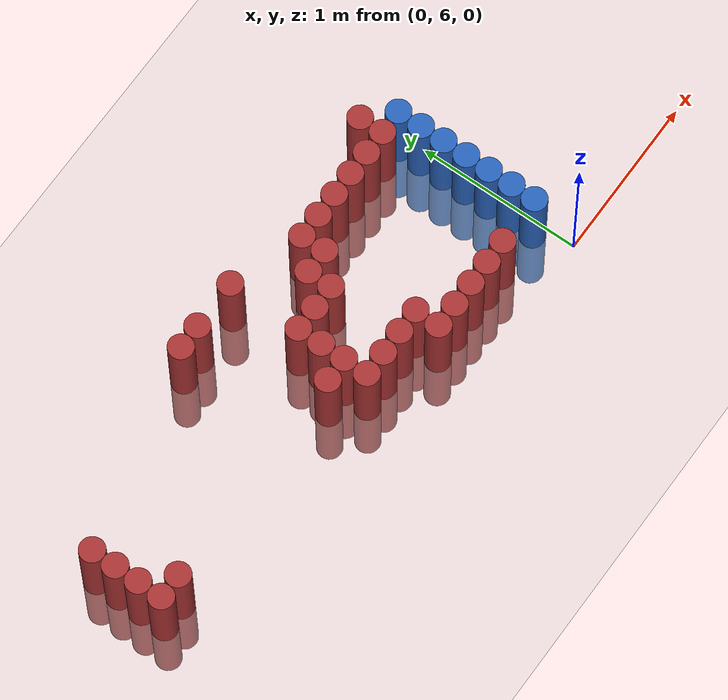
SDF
<sdf version="1.6">
 <world name="default">
  <model name="ground_plane">
   <static>1</static>
   <link name="link">
    <collision name="collision">
     <geometry><plane><normal>0 0 1</normal><size>100 100</size></plane></geometry>
     <surface><friction><ode><mu>100</mu><mu2>50</mu2></ode></friction></surface>
    </collision>
    <visual name="visual">
     <cast_shadows>0</cast_shadows>
     <geometry><plane><normal>0 0 1</normal><size>100 100</size></plane></geometry>
     <material>
      <script><uri>file://media/materials/scripts/gazebo.material</uri><name>Gazebo/Grey</name></script>
     </material>
    </visual>
   </link>
  </model>
  <model name="unit_cylinder_208">
   <static>1</static>
   <pose>-3.075000 6.525000 0.000000 0.000000 0.000000 0.000000</pose>
   <link name="link">
    <inertial>
     <mass>1</mass>
     <inertia><ixx>0.145833</ixx><ixy>0</ixy><ixz>0</ixz><iyy>0.145833</iyy><iyz>0</iyz><izz>0.125</izz></inertia>
    </inertial>
    <collision name="collision">
     <geometry><cylinder><radius>0.075000</radius><length>1</length></cylinder></geometry>
    </collision>
    <visual name="visual">
     <geometry><cylinder><radius>0.075000</radius><length>1</length></cylinder></geometry>
     <material>
      <ambient>0.648000 0.192000 0.192000 1</ambient>
      <diffuse>0.648000 0.192000 0.192000 1</diffuse>
     </material>
     <material>
      <script><name>Gazebo/Grey</name><uri>file://media/materials/scripts/gazebo.material</uri></script>
     </material>
    </visual>
    <sensor name="sensor_contact" type="contact"><contact><collision>collision</collision></contact></sensor>
   </link>
   <plugin filename="gz-sim-touchplugin-system" name="gz::sim::systems::TouchPlugin">
    <target>robot</target>
    <namespace>robot</namespace>
    <time>0.001</time>
    <enabled>true</enabled>
   </plugin>
  </model>
  <model name="unit_cylinder_209">
   <static>1</static>
   <pose>-3.075000 6.675000 0.000000 0.000000 0.000000 0.000000</pose>
   <link name="link">
    <inertial>
     <mass>1</mass>
     <inertia><ixx>0.145833</ixx><ixy>0</ixy><ixz>0</ixz><iyy>0.145833</iyy><iyz>0</iyz><izz>0.125</izz></inertia>
    </inertial>
    <collision name="collision">
     <geometry><cylinder><radius>0.075000</radius><length>1</length></cylinder></geometry>
    </collision>
    <visual name="visual">
     <geometry><cylinder><radius>0.075000</radius><length>1</length></cylinder></geometry>
     <material>
      <ambient>0.648000 0.192000 0.192000 1</ambient>
      <diffuse>0.648000 0.192000 0.192000 1</diffuse>
     </material>
     <material>
      <script><name>Gazebo/Grey</name><uri>file://media/materials/scripts/gazebo.material</uri></script>
     </material>
    </visual>
    <sensor name="sensor_contact" type="contact"><contact><collision>collision</collision></contact></sensor>
   </link>
   <plugin filename="gz-sim-touchplugin-system" name="gz::sim::systems::TouchPlugin">
    <target>robot</target>
    <namespace>robot</namespace>
    <time>0.001</time>
    <enabled>true</enabled>
   </plugin>
  </model>
  <model name="unit_cylinder_210">
   <static>1</static>
   <pose>-3.075000 6.825000 0.000000 0.000000 0.000000 0.000000</pose>
   <link name="link">
    <inertial>
     <mass>1</mass>
     <inertia><ixx>0.145833</ixx><ixy>0</ixy><ixz>0</ixz><iyy>0.145833</iyy><iyz>0</iyz><izz>0.125</izz></inertia>
    </inertial>
    <collision name="collision">
     <geometry><cylinder><radius>0.075000</radius><length>1</length></cylinder></geometry>
    </collision>
    <visual name="visual">
     <geometry><cylinder><radius>0.075000</radius><length>1</length></cylinder></geometry>
     <material>
      <ambient>0.648000 0.192000 0.192000 1</ambient>
      <diffuse>0.648000 0.192000 0.192000 1</diffuse>
     </material>
     <material>
      <script><name>Gazebo/Grey</name><uri>file://media/materials/scripts/gazebo.material</uri></script>
     </material>
    </visual>
    <sensor name="sensor_contact" type="contact"><contact><collision>collision</collision></contact></sensor>
   </link>
   <plugin filename="gz-sim-touchplugin-system" name="gz::sim::systems::TouchPlugin">
    <target>robot</target>
    <namespace>robot</namespace>
    <time>0.001</time>
    <enabled>true</enabled>
   </plugin>
  </model>
  <model name="unit_cylinder_211">
   <static>1</static>
   <pose>-3.075000 6.975000 0.000000 0.000000 0.000000 0.000000</pose>
   <link name="link">
    <inertial>
     <mass>1</mass>
     <inertia><ixx>0.145833</ixx><ixy>0</ixy><ixz>0</ixz><iyy>0.145833</iyy><iyz>0</iyz><izz>0.125</izz></inertia>
    </inertial>
    <collision name="collision">
     <geometry><cylinder><radius>0.075000</radius><length>1</length></cylinder></geometry>
    </collision>
    <visual name="visual">
     <geometry><cylinder><radius>0.075000</radius><length>1</length></cylinder></geometry>
     <material>
      <ambient>0.648000 0.192000 0.192000 1</ambient>
      <diffuse>0.648000 0.192000 0.192000 1</diffuse>
     </material>
     <material>
      <script><name>Gazebo/Grey</name><uri>file://media/materials/scripts/gazebo.material</uri></script>
     </material>
    </visual>
    <sensor name="sensor_contact" type="contact"><contact><collision>collision</collision></contact></sensor>
   </link>
   <plugin filename="gz-sim-touchplugin-system" name="gz::sim::systems::TouchPlugin">
    <target>robot</target>
    <namespace>robot</namespace>
    <time>0.001</time>
    <enabled>true</enabled>
   </plugin>
  </model>
  <model name="unit_cylinder_217">
   <static>1</static>
   <pose>-2.925000 6.525000 0.000000 0.000000 0.000000 0.000000</pose>
   <link name="link">
    <inertial>
     <mass>1</mass>
     <inertia><ixx>0.145833</ixx><ixy>0</ixy><ixz>0</ixz><iyy>0.145833</iyy><iyz>0</iyz><izz>0.125</izz></inertia>
    </inertial>
    <collision name="collision">
     <geometry><cylinder><radius>0.075000</radius><length>1</length></cylinder></geometry>
    </collision>
    <visual name="visual">
     <geometry><cylinder><radius>0.075000</radius><length>1</length></cylinder></geometry>
     <material>
      <ambient>0.648000 0.192000 0.192000 1</ambient>
      <diffuse>0.648000 0.192000 0.192000 1</diffuse>
     </material>
     <material>
      <script><name>Gazebo/Grey</name><uri>file://media/materials/scripts/gazebo.material</uri></script>
     </material>
    </visual>
    <sensor name="sensor_contact" type="contact"><contact><collision>collision</collision></contact></sensor>
   </link>
   <plugin filename="gz-sim-touchplugin-system" name="gz::sim::systems::TouchPlugin">
    <target>robot</target>
    <namespace>robot</namespace>
    <time>0.001</time>
    <enabled>true</enabled>
   </plugin>
  </model>
  <model name="unit_cylinder_227">
   <static>1</static>
   <pose>-1.875000 7.275000 0.000000 0.000000 0.000000 0.000000</pose>
   <link name="link">
    <inertial>
     <mass>1</mass>
     <inertia><ixx>0.145833</ixx><ixy>0</ixy><ixz>0</ixz><iyy>0.145833</iyy><iyz>0</iyz><izz>0.125</izz></inertia>
    </inertial>
    <collision name="collision">
     <geometry><cylinder><radius>0.075000</radius><length>1</length></cylinder></geometry>
    </collision>
    <visual name="visual">
     <geometry><cylinder><radius>0.075000</radius><length>1</length></cylinder></geometry>
     <material>
      <ambient>0.648000 0.192000 0.192000 1</ambient>
      <diffuse>0.648000 0.192000 0.192000 1</diffuse>
     </material>
     <material>
      <script><name>Gazebo/Grey</name><uri>file://media/materials/scripts/gazebo.material</uri></script>
     </material>
    </visual>
    <sensor name="sensor_contact" type="contact"><contact><collision>collision</collision></contact></sensor>
   </link>
   <plugin filename="gz-sim-touchplugin-system" name="gz::sim::systems::TouchPlugin">
    <target>robot</target>
    <namespace>robot</namespace>
    <time>0.001</time>
    <enabled>true</enabled>
   </plugin>
  </model>
  <model name="unit_cylinder_233">
   <static>1</static>
   <pose>-1.725000 7.275000 0.000000 0.000000 0.000000 0.000000</pose>
   <link name="link">
    <inertial>
     <mass>1</mass>
     <inertia><ixx>0.145833</ixx><ixy>0</ixy><ixz>0</ixz><iyy>0.145833</iyy><iyz>0</iyz><izz>0.125</izz></inertia>
    </inertial>
    <collision name="collision">
     <geometry><cylinder><radius>0.075000</radius><length>1</length></cylinder></geometry>
    </collision>
    <visual name="visual">
     <geometry><cylinder><radius>0.075000</radius><length>1</length></cylinder></geometry>
     <material>
      <ambient>0.648000 0.192000 0.192000 1</ambient>
      <diffuse>0.648000 0.192000 0.192000 1</diffuse>
     </material>
     <material>
      <script><name>Gazebo/Grey</name><uri>file://media/materials/scripts/gazebo.material</uri></script>
     </material>
    </visual>
    <sensor name="sensor_contact" type="contact"><contact><collision>collision</collision></contact></sensor>
   </link>
   <plugin filename="gz-sim-touchplugin-system" name="gz::sim::systems::TouchPlugin">
    <target>robot</target>
    <namespace>robot</namespace>
    <time>0.001</time>
    <enabled>true</enabled>
   </plugin>
  </model>
  <model name="unit_cylinder_239">
   <static>1</static>
   <pose>-1.575000 6.525000 0.000000 0.000000 0.000000 0.000000</pose>
   <link name="link">
    <inertial>
     <mass>1</mass>
     <inertia><ixx>0.145833</ixx><ixy>0</ixy><ixz>0</ixz><iyy>0.145833</iyy><iyz>0</iyz><izz>0.125</izz></inertia>
    </inertial>
    <collision name="collision">
     <geometry><cylinder><radius>0.075000</radius><length>1</length></cylinder></geometry>
    </collision>
    <visual name="visual">
     <geometry><cylinder><radius>0.075000</radius><length>1</length></cylinder></geometry>
     <material>
      <ambient>0.648000 0.192000 0.192000 1</ambient>
      <diffuse>0.648000 0.192000 0.192000 1</diffuse>
     </material>
     <material>
      <script><name>Gazebo/Grey</name><uri>file://media/materials/scripts/gazebo.material</uri></script>
     </material>
    </visual>
    <sensor name="sensor_contact" type="contact"><contact><collision>collision</collision></contact></sensor>
   </link>
   <plugin filename="gz-sim-touchplugin-system" name="gz::sim::systems::TouchPlugin">
    <target>robot</target>
    <namespace>robot</namespace>
    <time>0.001</time>
    <enabled>true</enabled>
   </plugin>
  </model>
  <model name="unit_cylinder_241">
   <static>1</static>
   <pose>-1.425000 6.375000 0.000000 0.000000 0.000000 0.000000</pose>
   <link name="link">
    <inertial>
     <mass>1</mass>
     <inertia><ixx>0.145833</ixx><ixy>0</ixy><ixz>0</ixz><iyy>0.145833</iyy><iyz>0</iyz><izz>0.125</izz></inertia>
    </inertial>
    <collision name="collision">
     <geometry><cylinder><radius>0.075000</radius><length>1</length></cylinder></geometry>
    </collision>
    <visual name="visual">
     <geometry><cylinder><radius>0.075000</radius><length>1</length></cylinder></geometry>
     <material>
      <ambient>0.648000 0.192000 0.192000 1</ambient>
      <diffuse>0.648000 0.192000 0.192000 1</diffuse>
     </material>
     <material>
      <script><name>Gazebo/Grey</name><uri>file://media/materials/scripts/gazebo.material</uri></script>
     </material>
    </visual>
    <sensor name="sensor_contact" type="contact"><contact><collision>collision</collision></contact></sensor>
   </link>
   <plugin filename="gz-sim-touchplugin-system" name="gz::sim::systems::TouchPlugin">
    <target>robot</target>
    <namespace>robot</namespace>
    <time>0.001</time>
    <enabled>true</enabled>
   </plugin>
  </model>
  <model name="unit_cylinder_242">
   <static>1</static>
   <pose>-1.425000 6.525000 0.000000 0.000000 0.000000 0.000000</pose>
   <link name="link">
    <inertial>
     <mass>1</mass>
     <inertia><ixx>0.145833</ixx><ixy>0</ixy><ixz>0</ixz><iyy>0.145833</iyy><iyz>0</iyz><izz>0.125</izz></inertia>
    </inertial>
    <collision name="collision">
     <geometry><cylinder><radius>0.075000</radius><length>1</length></cylinder></geometry>
    </collision>
    <visual name="visual">
     <geometry><cylinder><radius>0.075000</radius><length>1</length></cylinder></geometry>
     <material>
      <ambient>0.648000 0.192000 0.192000 1</ambient>
      <diffuse>0.648000 0.192000 0.192000 1</diffuse>
     </material>
     <material>
      <script><name>Gazebo/Grey</name><uri>file://media/materials/scripts/gazebo.material</uri></script>
     </material>
    </visual>
    <sensor name="sensor_contact" type="contact"><contact><collision>collision</collision></contact></sensor>
   </link>
   <plugin filename="gz-sim-touchplugin-system" name="gz::sim::systems::TouchPlugin">
    <target>robot</target>
    <namespace>robot</namespace>
    <time>0.001</time>
    <enabled>true</enabled>
   </plugin>
  </model>
  <model name="unit_cylinder_243">
   <static>1</static>
   <pose>-1.425000 6.675000 0.000000 0.000000 0.000000 0.000000</pose>
   <link name="link">
    <inertial>
     <mass>1</mass>
     <inertia><ixx>0.145833</ixx><ixy>0</ixy><ixz>0</ixz><iyy>0.145833</iyy><iyz>0</iyz><izz>0.125</izz></inertia>
    </inertial>
    <collision name="collision">
     <geometry><cylinder><radius>0.075000</radius><length>1</length></cylinder></geometry>
    </collision>
    <visual name="visual">
     <geometry><cylinder><radius>0.075000</radius><length>1</length></cylinder></geometry>
     <material>
      <ambient>0.648000 0.192000 0.192000 1</ambient>
      <diffuse>0.648000 0.192000 0.192000 1</diffuse>
     </material>
     <material>
      <script><name>Gazebo/Grey</name><uri>file://media/materials/scripts/gazebo.material</uri></script>
     </material>
    </visual>
    <sensor name="sensor_contact" type="contact"><contact><collision>collision</collision></contact></sensor>
   </link>
   <plugin filename="gz-sim-touchplugin-system" name="gz::sim::systems::TouchPlugin">
    <target>robot</target>
    <namespace>robot</namespace>
    <time>0.001</time>
    <enabled>true</enabled>
   </plugin>
  </model>
  <model name="unit_cylinder_244">
   <static>1</static>
   <pose>-1.425000 6.825000 0.000000 0.000000 0.000000 0.000000</pose>
   <link name="link">
    <inertial>
     <mass>1</mass>
     <inertia><ixx>0.145833</ixx><ixy>0</ixy><ixz>0</ixz><iyy>0.145833</iyy><iyz>0</iyz><izz>0.125</izz></inertia>
    </inertial>
    <collision name="collision">
     <geometry><cylinder><radius>0.075000</radius><length>1</length></cylinder></geometry>
    </collision>
    <visual name="visual">
     <geometry><cylinder><radius>0.075000</radius><length>1</length></cylinder></geometry>
     <material>
      <ambient>0.648000 0.192000 0.192000 1</ambient>
      <diffuse>0.648000 0.192000 0.192000 1</diffuse>
     </material>
     <material>
      <script><name>Gazebo/Grey</name><uri>file://media/materials/scripts/gazebo.material</uri></script>
     </material>
    </visual>
    <sensor name="sensor_contact" type="contact"><contact><collision>collision</collision></contact></sensor>
   </link>
   <plugin filename="gz-sim-touchplugin-system" name="gz::sim::systems::TouchPlugin">
    <target>robot</target>
    <namespace>robot</namespace>
    <time>0.001</time>
    <enabled>true</enabled>
   </plugin>
  </model>
  <model name="unit_cylinder_245">
   <static>1</static>
   <pose>-1.425000 7.275000 0.000000 0.000000 0.000000 0.000000</pose>
   <link name="link">
    <inertial>
     <mass>1</mass>
     <inertia><ixx>0.145833</ixx><ixy>0</ixy><ixz>0</ixz><iyy>0.145833</iyy><iyz>0</iyz><izz>0.125</izz></inertia>
    </inertial>
    <collision name="collision">
     <geometry><cylinder><radius>0.075000</radius><length>1</length></cylinder></geometry>
    </collision>
    <visual name="visual">
     <geometry><cylinder><radius>0.075000</radius><length>1</length></cylinder></geometry>
     <material>
      <ambient>0.648000 0.192000 0.192000 1</ambient>
      <diffuse>0.648000 0.192000 0.192000 1</diffuse>
     </material>
     <material>
      <script><name>Gazebo/Grey</name><uri>file://media/materials/scripts/gazebo.material</uri></script>
     </material>
    </visual>
    <sensor name="sensor_contact" type="contact"><contact><collision>collision</collision></contact></sensor>
   </link>
   <plugin filename="gz-sim-touchplugin-system" name="gz::sim::systems::TouchPlugin">
    <target>robot</target>
    <namespace>robot</namespace>
    <time>0.001</time>
    <enabled>true</enabled>
   </plugin>
  </model>
  <model name="unit_cylinder_249">
   <static>1</static>
   <pose>-1.275000 6.375000 0.000000 0.000000 0.000000 0.000000</pose>
   <link name="link">
    <inertial>
     <mass>1</mass>
     <inertia><ixx>0.145833</ixx><ixy>0</ixy><ixz>0</ixz><iyy>0.145833</iyy><iyz>0</iyz><izz>0.125</izz></inertia>
    </inertial>
    <collision name="collision">
     <geometry><cylinder><radius>0.075000</radius><length>1</length></cylinder></geometry>
    </collision>
    <visual name="visual">
     <geometry><cylinder><radius>0.075000</radius><length>1</length></cylinder></geometry>
     <material>
      <ambient>0.648000 0.192000 0.192000 1</ambient>
      <diffuse>0.648000 0.192000 0.192000 1</diffuse>
     </material>
     <material>
      <script><name>Gazebo/Grey</name><uri>file://media/materials/scripts/gazebo.material</uri></script>
     </material>
    </visual>
    <sensor name="sensor_contact" type="contact"><contact><collision>collision</collision></contact></sensor>
   </link>
   <plugin filename="gz-sim-touchplugin-system" name="gz::sim::systems::TouchPlugin">
    <target>robot</target>
    <namespace>robot</namespace>
    <time>0.001</time>
    <enabled>true</enabled>
   </plugin>
  </model>
  <model name="unit_cylinder_250">
   <static>1</static>
   <pose>-1.275000 6.825000 0.000000 0.000000 0.000000 0.000000</pose>
   <link name="link">
    <inertial>
     <mass>1</mass>
     <inertia><ixx>0.145833</ixx><ixy>0</ixy><ixz>0</ixz><iyy>0.145833</iyy><iyz>0</iyz><izz>0.125</izz></inertia>
    </inertial>
    <collision name="collision">
     <geometry><cylinder><radius>0.075000</radius><length>1</length></cylinder></geometry>
    </collision>
    <visual name="visual">
     <geometry><cylinder><radius>0.075000</radius><length>1</length></cylinder></geometry>
     <material>
      <ambient>0.648000 0.192000 0.192000 1</ambient>
      <diffuse>0.648000 0.192000 0.192000 1</diffuse>
     </material>
     <material>
      <script><name>Gazebo/Grey</name><uri>file://media/materials/scripts/gazebo.material</uri></script>
     </material>
    </visual>
    <sensor name="sensor_contact" type="contact"><contact><collision>collision</collision></contact></sensor>
   </link>
   <plugin filename="gz-sim-touchplugin-system" name="gz::sim::systems::TouchPlugin">
    <target>robot</target>
    <namespace>robot</namespace>
    <time>0.001</time>
    <enabled>true</enabled>
   </plugin>
  </model>
  <model name="unit_cylinder_257">
   <static>1</static>
   <pose>-1.125000 6.375000 0.000000 0.000000 0.000000 0.000000</pose>
   <link name="link">
    <inertial>
     <mass>1</mass>
     <inertia><ixx>0.145833</ixx><ixy>0</ixy><ixz>0</ixz><iyy>0.145833</iyy><iyz>0</iyz><izz>0.125</izz></inertia>
    </inertial>
    <collision name="collision">
     <geometry><cylinder><radius>0.075000</radius><length>1</length></cylinder></geometry>
    </collision>
    <visual name="visual">
     <geometry><cylinder><radius>0.075000</radius><length>1</length></cylinder></geometry>
     <material>
      <ambient>0.648000 0.192000 0.192000 1</ambient>
      <diffuse>0.648000 0.192000 0.192000 1</diffuse>
     </material>
     <material>
      <script><name>Gazebo/Grey</name><uri>file://media/materials/scripts/gazebo.material</uri></script>
     </material>
    </visual>
    <sensor name="sensor_contact" type="contact"><contact><collision>collision</collision></contact></sensor>
   </link>
   <plugin filename="gz-sim-touchplugin-system" name="gz::sim::systems::TouchPlugin">
    <target>robot</target>
    <namespace>robot</namespace>
    <time>0.001</time>
    <enabled>true</enabled>
   </plugin>
  </model>
  <model name="unit_cylinder_258">
   <static>1</static>
   <pose>-1.125000 6.825000 0.000000 0.000000 0.000000 0.000000</pose>
   <link name="link">
    <inertial>
     <mass>1</mass>
     <inertia><ixx>0.145833</ixx><ixy>0</ixy><ixz>0</ixz><iyy>0.145833</iyy><iyz>0</iyz><izz>0.125</izz></inertia>
    </inertial>
    <collision name="collision">
     <geometry><cylinder><radius>0.075000</radius><length>1</length></cylinder></geometry>
    </collision>
    <visual name="visual">
     <geometry><cylinder><radius>0.075000</radius><length>1</length></cylinder></geometry>
     <material>
      <ambient>0.648000 0.192000 0.192000 1</ambient>
      <diffuse>0.648000 0.192000 0.192000 1</diffuse>
     </material>
     <material>
      <script><name>Gazebo/Grey</name><uri>file://media/materials/scripts/gazebo.material</uri></script>
     </material>
    </visual>
    <sensor name="sensor_contact" type="contact"><contact><collision>collision</collision></contact></sensor>
   </link>
   <plugin filename="gz-sim-touchplugin-system" name="gz::sim::systems::TouchPlugin">
    <target>robot</target>
    <namespace>robot</namespace>
    <time>0.001</time>
    <enabled>true</enabled>
   </plugin>
  </model>
  <model name="unit_cylinder_259">
   <static>1</static>
   <pose>-1.125000 6.975000 0.000000 0.000000 0.000000 0.000000</pose>
   <link name="link">
    <inertial>
     <mass>1</mass>
     <inertia><ixx>0.145833</ixx><ixy>0</ixy><ixz>0</ixz><iyy>0.145833</iyy><iyz>0</iyz><izz>0.125</izz></inertia>
    </inertial>
    <collision name="collision">
     <geometry><cylinder><radius>0.075000</radius><length>1</length></cylinder></geometry>
    </collision>
    <visual name="visual">
     <geometry><cylinder><radius>0.075000</radius><length>1</length></cylinder></geometry>
     <material>
      <ambient>0.648000 0.192000 0.192000 1</ambient>
      <diffuse>0.648000 0.192000 0.192000 1</diffuse>
     </material>
     <material>
      <script><name>Gazebo/Grey</name><uri>file://media/materials/scripts/gazebo.material</uri></script>
     </material>
    </visual>
    <sensor name="sensor_contact" type="contact"><contact><collision>collision</collision></contact></sensor>
   </link>
   <plugin filename="gz-sim-touchplugin-system" name="gz::sim::systems::TouchPlugin">
    <target>robot</target>
    <namespace>robot</namespace>
    <time>0.001</time>
    <enabled>true</enabled>
   </plugin>
  </model>
  <model name="unit_cylinder_267">
   <static>1</static>
   <pose>-0.975000 6.225000 0.000000 0.000000 0.000000 0.000000</pose>
   <link name="link">
    <inertial>
     <mass>1</mass>
     <inertia><ixx>0.145833</ixx><ixy>0</ixy><ixz>0</ixz><iyy>0.145833</iyy><iyz>0</iyz><izz>0.125</izz></inertia>
    </inertial>
    <collision name="collision">
     <geometry><cylinder><radius>0.075000</radius><length>1</length></cylinder></geometry>
    </collision>
    <visual name="visual">
     <geometry><cylinder><radius>0.075000</radius><length>1</length></cylinder></geometry>
     <material>
      <ambient>0.648000 0.192000 0.192000 1</ambient>
      <diffuse>0.648000 0.192000 0.192000 1</diffuse>
     </material>
     <material>
      <script><name>Gazebo/Grey</name><uri>file://media/materials/scripts/gazebo.material</uri></script>
     </material>
    </visual>
    <sensor name="sensor_contact" type="contact"><contact><collision>collision</collision></contact></sensor>
   </link>
   <plugin filename="gz-sim-touchplugin-system" name="gz::sim::systems::TouchPlugin">
    <target>robot</target>
    <namespace>robot</namespace>
    <time>0.001</time>
    <enabled>true</enabled>
   </plugin>
  </model>
  <model name="unit_cylinder_268">
   <static>1</static>
   <pose>-0.975000 6.375000 0.000000 0.000000 0.000000 0.000000</pose>
   <link name="link">
    <inertial>
     <mass>1</mass>
     <inertia><ixx>0.145833</ixx><ixy>0</ixy><ixz>0</ixz><iyy>0.145833</iyy><iyz>0</iyz><izz>0.125</izz></inertia>
    </inertial>
    <collision name="collision">
     <geometry><cylinder><radius>0.075000</radius><length>1</length></cylinder></geometry>
    </collision>
    <visual name="visual">
     <geometry><cylinder><radius>0.075000</radius><length>1</length></cylinder></geometry>
     <material>
      <ambient>0.648000 0.192000 0.192000 1</ambient>
      <diffuse>0.648000 0.192000 0.192000 1</diffuse>
     </material>
     <material>
      <script><name>Gazebo/Grey</name><uri>file://media/materials/scripts/gazebo.material</uri></script>
     </material>
    </visual>
    <sensor name="sensor_contact" type="contact"><contact><collision>collision</collision></contact></sensor>
   </link>
   <plugin filename="gz-sim-touchplugin-system" name="gz::sim::systems::TouchPlugin">
    <target>robot</target>
    <namespace>robot</namespace>
    <time>0.001</time>
    <enabled>true</enabled>
   </plugin>
  </model>
  <model name="unit_cylinder_269">
   <static>1</static>
   <pose>-0.975000 6.975000 0.000000 0.000000 0.000000 0.000000</pose>
   <link name="link">
    <inertial>
     <mass>1</mass>
     <inertia><ixx>0.145833</ixx><ixy>0</ixy><ixz>0</ixz><iyy>0.145833</iyy><iyz>0</iyz><izz>0.125</izz></inertia>
    </inertial>
    <collision name="collision">
     <geometry><cylinder><radius>0.075000</radius><length>1</length></cylinder></geometry>
    </collision>
    <visual name="visual">
     <geometry><cylinder><radius>0.075000</radius><length>1</length></cylinder></geometry>
     <material>
      <ambient>0.648000 0.192000 0.192000 1</ambient>
      <diffuse>0.648000 0.192000 0.192000 1</diffuse>
     </material>
     <material>
      <script><name>Gazebo/Grey</name><uri>file://media/materials/scripts/gazebo.material</uri></script>
     </material>
    </visual>
    <sensor name="sensor_contact" type="contact"><contact><collision>collision</collision></contact></sensor>
   </link>
   <plugin filename="gz-sim-touchplugin-system" name="gz::sim::systems::TouchPlugin">
    <target>robot</target>
    <namespace>robot</namespace>
    <time>0.001</time>
    <enabled>true</enabled>
   </plugin>
  </model>
  <model name="unit_cylinder_270">
   <static>1</static>
   <pose>-0.975000 7.125000 0.000000 0.000000 0.000000 0.000000</pose>
   <link name="link">
    <inertial>
     <mass>1</mass>
     <inertia><ixx>0.145833</ixx><ixy>0</ixy><ixz>0</ixz><iyy>0.145833</iyy><iyz>0</iyz><izz>0.125</izz></inertia>
    </inertial>
    <collision name="collision">
     <geometry><cylinder><radius>0.075000</radius><length>1</length></cylinder></geometry>
    </collision>
    <visual name="visual">
     <geometry><cylinder><radius>0.075000</radius><length>1</length></cylinder></geometry>
     <material>
      <ambient>0.648000 0.192000 0.192000 1</ambient>
      <diffuse>0.648000 0.192000 0.192000 1</diffuse>
     </material>
     <material>
      <script><name>Gazebo/Grey</name><uri>file://media/materials/scripts/gazebo.material</uri></script>
     </material>
    </visual>
    <sensor name="sensor_contact" type="contact"><contact><collision>collision</collision></contact></sensor>
   </link>
   <plugin filename="gz-sim-touchplugin-system" name="gz::sim::systems::TouchPlugin">
    <target>robot</target>
    <namespace>robot</namespace>
    <time>0.001</time>
    <enabled>true</enabled>
   </plugin>
  </model>
  <model name="unit_cylinder_276">
   <static>1</static>
   <pose>-0.825000 6.225000 0.000000 0.000000 0.000000 0.000000</pose>
   <link name="link">
    <inertial>
     <mass>1</mass>
     <inertia><ixx>0.145833</ixx><ixy>0</ixy><ixz>0</ixz><iyy>0.145833</iyy><iyz>0</iyz><izz>0.125</izz></inertia>
    </inertial>
    <collision name="collision">
     <geometry><cylinder><radius>0.075000</radius><length>1</length></cylinder></geometry>
    </collision>
    <visual name="visual">
     <geometry><cylinder><radius>0.075000</radius><length>1</length></cylinder></geometry>
     <material>
      <ambient>0.648000 0.192000 0.192000 1</ambient>
      <diffuse>0.648000 0.192000 0.192000 1</diffuse>
     </material>
     <material>
      <script><name>Gazebo/Grey</name><uri>file://media/materials/scripts/gazebo.material</uri></script>
     </material>
    </visual>
    <sensor name="sensor_contact" type="contact"><contact><collision>collision</collision></contact></sensor>
   </link>
   <plugin filename="gz-sim-touchplugin-system" name="gz::sim::systems::TouchPlugin">
    <target>robot</target>
    <namespace>robot</namespace>
    <time>0.001</time>
    <enabled>true</enabled>
   </plugin>
  </model>
  <model name="unit_cylinder_277">
   <static>1</static>
   <pose>-0.825000 7.125000 0.000000 0.000000 0.000000 0.000000</pose>
   <link name="link">
    <inertial>
     <mass>1</mass>
     <inertia><ixx>0.145833</ixx><ixy>0</ixy><ixz>0</ixz><iyy>0.145833</iyy><iyz>0</iyz><izz>0.125</izz></inertia>
    </inertial>
    <collision name="collision">
     <geometry><cylinder><radius>0.075000</radius><length>1</length></cylinder></geometry>
    </collision>
    <visual name="visual">
     <geometry><cylinder><radius>0.075000</radius><length>1</length></cylinder></geometry>
     <material>
      <ambient>0.648000 0.192000 0.192000 1</ambient>
      <diffuse>0.648000 0.192000 0.192000 1</diffuse>
     </material>
     <material>
      <script><name>Gazebo/Grey</name><uri>file://media/materials/scripts/gazebo.material</uri></script>
     </material>
    </visual>
    <sensor name="sensor_contact" type="contact"><contact><collision>collision</collision></contact></sensor>
   </link>
   <plugin filename="gz-sim-touchplugin-system" name="gz::sim::systems::TouchPlugin">
    <target>robot</target>
    <namespace>robot</namespace>
    <time>0.001</time>
    <enabled>true</enabled>
   </plugin>
  </model>
  <model name="unit_cylinder_287">
   <static>1</static>
   <pose>-0.675000 6.225000 0.000000 0.000000 0.000000 0.000000</pose>
   <link name="link">
    <inertial>
     <mass>1</mass>
     <inertia><ixx>0.145833</ixx><ixy>0</ixy><ixz>0</ixz><iyy>0.145833</iyy><iyz>0</iyz><izz>0.125</izz></inertia>
    </inertial>
    <collision name="collision">
     <geometry><cylinder><radius>0.075000</radius><length>1</length></cylinder></geometry>
    </collision>
    <visual name="visual">
     <geometry><cylinder><radius>0.075000</radius><length>1</length></cylinder></geometry>
     <material>
      <ambient>0.648000 0.192000 0.192000 1</ambient>
      <diffuse>0.648000 0.192000 0.192000 1</diffuse>
     </material>
     <material>
      <script><name>Gazebo/Grey</name><uri>file://media/materials/scripts/gazebo.material</uri></script>
     </material>
    </visual>
    <sensor name="sensor_contact" type="contact"><contact><collision>collision</collision></contact></sensor>
   </link>
   <plugin filename="gz-sim-touchplugin-system" name="gz::sim::systems::TouchPlugin">
    <target>robot</target>
    <namespace>robot</namespace>
    <time>0.001</time>
    <enabled>true</enabled>
   </plugin>
  </model>
  <model name="unit_cylinder_288">
   <static>1</static>
   <pose>-0.675000 7.125000 0.000000 0.000000 0.000000 0.000000</pose>
   <link name="link">
    <inertial>
     <mass>1</mass>
     <inertia><ixx>0.145833</ixx><ixy>0</ixy><ixz>0</ixz><iyy>0.145833</iyy><iyz>0</iyz><izz>0.125</izz></inertia>
    </inertial>
    <collision name="collision">
     <geometry><cylinder><radius>0.075000</radius><length>1</length></cylinder></geometry>
    </collision>
    <visual name="visual">
     <geometry><cylinder><radius>0.075000</radius><length>1</length></cylinder></geometry>
     <material>
      <ambient>0.648000 0.192000 0.192000 1</ambient>
      <diffuse>0.648000 0.192000 0.192000 1</diffuse>
     </material>
     <material>
      <script><name>Gazebo/Grey</name><uri>file://media/materials/scripts/gazebo.material</uri></script>
     </material>
    </visual>
    <sensor name="sensor_contact" type="contact"><contact><collision>collision</collision></contact></sensor>
   </link>
   <plugin filename="gz-sim-touchplugin-system" name="gz::sim::systems::TouchPlugin">
    <target>robot</target>
    <namespace>robot</namespace>
    <time>0.001</time>
    <enabled>true</enabled>
   </plugin>
  </model>
  <model name="unit_cylinder_294">
   <static>1</static>
   <pose>-0.525000 6.225000 0.000000 0.000000 0.000000 0.000000</pose>
   <link name="link">
    <inertial>
     <mass>1</mass>
     <inertia><ixx>0.145833</ixx><ixy>0</ixy><ixz>0</ixz><iyy>0.145833</iyy><iyz>0</iyz><izz>0.125</izz></inertia>
    </inertial>
    <collision name="collision">
     <geometry><cylinder><radius>0.075000</radius><length>1</length></cylinder></geometry>
    </collision>
    <visual name="visual">
     <geometry><cylinder><radius>0.075000</radius><length>1</length></cylinder></geometry>
     <material>
      <ambient>0.648000 0.192000 0.192000 1</ambient>
      <diffuse>0.648000 0.192000 0.192000 1</diffuse>
     </material>
     <material>
      <script><name>Gazebo/Grey</name><uri>file://media/materials/scripts/gazebo.material</uri></script>
     </material>
    </visual>
    <sensor name="sensor_contact" type="contact"><contact><collision>collision</collision></contact></sensor>
   </link>
   <plugin filename="gz-sim-touchplugin-system" name="gz::sim::systems::TouchPlugin">
    <target>robot</target>
    <namespace>robot</namespace>
    <time>0.001</time>
    <enabled>true</enabled>
   </plugin>
  </model>
  <model name="unit_cylinder_295">
   <static>1</static>
   <pose>-0.525000 7.125000 0.000000 0.000000 0.000000 0.000000</pose>
   <link name="link">
    <inertial>
     <mass>1</mass>
     <inertia><ixx>0.145833</ixx><ixy>0</ixy><ixz>0</ixz><iyy>0.145833</iyy><iyz>0</iyz><izz>0.125</izz></inertia>
    </inertial>
    <collision name="collision">
     <geometry><cylinder><radius>0.075000</radius><length>1</length></cylinder></geometry>
    </collision>
    <visual name="visual">
     <geometry><cylinder><radius>0.075000</radius><length>1</length></cylinder></geometry>
     <material>
      <ambient>0.648000 0.192000 0.192000 1</ambient>
      <diffuse>0.648000 0.192000 0.192000 1</diffuse>
     </material>
     <material>
      <script><name>Gazebo/Grey</name><uri>file://media/materials/scripts/gazebo.material</uri></script>
     </material>
    </visual>
    <sensor name="sensor_contact" type="contact"><contact><collision>collision</collision></contact></sensor>
   </link>
   <plugin filename="gz-sim-touchplugin-system" name="gz::sim::systems::TouchPlugin">
    <target>robot</target>
    <namespace>robot</namespace>
    <time>0.001</time>
    <enabled>true</enabled>
   </plugin>
  </model>
  <model name="unit_cylinder_301">
   <static>1</static>
   <pose>-0.375000 6.225000 0.000000 0.000000 0.000000 0.000000</pose>
   <link name="link">
    <inertial>
     <mass>1</mass>
     <inertia><ixx>0.145833</ixx><ixy>0</ixy><ixz>0</ixz><iyy>0.145833</iyy><iyz>0</iyz><izz>0.125</izz></inertia>
    </inertial>
    <collision name="collision">
     <geometry><cylinder><radius>0.075000</radius><length>1</length></cylinder></geometry>
    </collision>
    <visual name="visual">
     <geometry><cylinder><radius>0.075000</radius><length>1</length></cylinder></geometry>
     <material>
      <ambient>0.648000 0.192000 0.192000 1</ambient>
      <diffuse>0.648000 0.192000 0.192000 1</diffuse>
     </material>
     <material>
      <script><name>Gazebo/Grey</name><uri>file://media/materials/scripts/gazebo.material</uri></script>
     </material>
    </visual>
    <sensor name="sensor_contact" type="contact"><contact><collision>collision</collision></contact></sensor>
   </link>
   <plugin filename="gz-sim-touchplugin-system" name="gz::sim::systems::TouchPlugin">
    <target>robot</target>
    <namespace>robot</namespace>
    <time>0.001</time>
    <enabled>true</enabled>
   </plugin>
  </model>
  <model name="unit_cylinder_302">
   <static>1</static>
   <pose>-0.375000 7.125000 0.000000 0.000000 0.000000 0.000000</pose>
   <link name="link">
    <inertial>
     <mass>1</mass>
     <inertia><ixx>0.145833</ixx><ixy>0</ixy><ixz>0</ixz><iyy>0.145833</iyy><iyz>0</iyz><izz>0.125</izz></inertia>
    </inertial>
    <collision name="collision">
     <geometry><cylinder><radius>0.075000</radius><length>1</length></cylinder></geometry>
    </collision>
    <visual name="visual">
     <geometry><cylinder><radius>0.075000</radius><length>1</length></cylinder></geometry>
     <material>
      <ambient>0.648000 0.192000 0.192000 1</ambient>
      <diffuse>0.648000 0.192000 0.192000 1</diffuse>
     </material>
     <material>
      <script><name>Gazebo/Grey</name><uri>file://media/materials/scripts/gazebo.material</uri></script>
     </material>
    </visual>
    <sensor name="sensor_contact" type="contact"><contact><collision>collision</collision></contact></sensor>
   </link>
   <plugin filename="gz-sim-touchplugin-system" name="gz::sim::systems::TouchPlugin">
    <target>robot</target>
    <namespace>robot</namespace>
    <time>0.001</time>
    <enabled>true</enabled>
   </plugin>
  </model>
  <model name="unit_cylinder_309">
   <static>1</static>
   <pose>-0.225000 7.125000 0.000000 0.000000 0.000000 0.000000</pose>
   <link name="link">
    <inertial>
     <mass>1</mass>
     <inertia><ixx>0.145833</ixx><ixy>0</ixy><ixz>0</ixz><iyy>0.145833</iyy><iyz>0</iyz><izz>0.125</izz></inertia>
    </inertial>
    <collision name="collision">
     <geometry><cylinder><radius>0.075000</radius><length>1</length></cylinder></geometry>
    </collision>
    <visual name="visual">
     <geometry><cylinder><radius>0.075000</radius><length>1</length></cylinder></geometry>
     <material>
      <ambient>0.648000 0.192000 0.192000 1</ambient>
      <diffuse>0.648000 0.192000 0.192000 1</diffuse>
     </material>
     <material>
      <script><name>Gazebo/Grey</name><uri>file://media/materials/scripts/gazebo.material</uri></script>
     </material>
    </visual>
    <sensor name="sensor_contact" type="contact"><contact><collision>collision</collision></contact></sensor>
   </link>
   <plugin filename="gz-sim-touchplugin-system" name="gz::sim::systems::TouchPlugin">
    <target>robot</target>
    <namespace>robot</namespace>
    <time>0.001</time>
    <enabled>true</enabled>
   </plugin>
  </model>
  <model name="unit_cylinder_310">
   <static>1</static>
   <pose>-0.225000 7.275000 0.000000 0.000000 0.000000 0.000000</pose>
   <link name="link">
    <inertial>
     <mass>1</mass>
     <inertia><ixx>0.145833</ixx><ixy>0</ixy><ixz>0</ixz><iyy>0.145833</iyy><iyz>0</iyz><izz>0.125</izz></inertia>
    </inertial>
    <collision name="collision">
     <geometry><cylinder><radius>0.075000</radius><length>1</length></cylinder></geometry>
    </collision>
    <visual name="visual">
     <geometry><cylinder><radius>0.075000</radius><length>1</length></cylinder></geometry>
     <material>
      <ambient>0.648000 0.192000 0.192000 1</ambient>
      <diffuse>0.648000 0.192000 0.192000 1</diffuse>
     </material>
     <material>
      <script><name>Gazebo/Grey</name><uri>file://media/materials/scripts/gazebo.material</uri></script>
     </material>
    </visual>
    <sensor name="sensor_contact" type="contact"><contact><collision>collision</collision></contact></sensor>
   </link>
   <plugin filename="gz-sim-touchplugin-system" name="gz::sim::systems::TouchPlugin">
    <target>robot</target>
    <namespace>robot</namespace>
    <time>0.001</time>
    <enabled>true</enabled>
   </plugin>
  </model>
  <model name="unit_cylinder_326">
   <static>1</static>
   <pose>-0.075000 6.225000 0.000000 0.000000 0.000000 0.000000</pose>
   <link name="link">
    <inertial>
     <mass>1</mass>
     <inertia><ixx>0.145833</ixx><ixy>0</ixy><ixz>0</ixz><iyy>0.145833</iyy><iyz>0</iyz><izz>0.125</izz></inertia>
    </inertial>
    <collision name="collision">
     <geometry><cylinder><radius>0.075000</radius><length>1</length></cylinder></geometry>
    </collision>
    <visual name="visual">
     <geometry><cylinder><radius>0.075000</radius><length>1</length></cylinder></geometry>
     <material>
      <ambient>0.152000 0.379000 0.720000 1</ambient>
      <diffuse>0.152000 0.379000 0.720000 1</diffuse>
     </material>
     <material>
      <script><name>Gazebo/Grey</name><uri>file://media/materials/scripts/gazebo.material</uri></script>
     </material>
    </visual>
    <sensor name="sensor_contact" type="contact"><contact><collision>collision</collision></contact></sensor>
   </link>
   <plugin filename="gz-sim-touchplugin-system" name="gz::sim::systems::TouchPlugin">
    <target>robot</target>
    <namespace>robot</namespace>
    <time>0.001</time>
    <enabled>true</enabled>
   </plugin>
  </model>
  <model name="unit_cylinder_327">
   <static>1</static>
   <pose>-0.075000 6.375000 0.000000 0.000000 0.000000 0.000000</pose>
   <link name="link">
    <inertial>
     <mass>1</mass>
     <inertia><ixx>0.145833</ixx><ixy>0</ixy><ixz>0</ixz><iyy>0.145833</iyy><iyz>0</iyz><izz>0.125</izz></inertia>
    </inertial>
    <collision name="collision">
     <geometry><cylinder><radius>0.075000</radius><length>1</length></cylinder></geometry>
    </collision>
    <visual name="visual">
     <geometry><cylinder><radius>0.075000</radius><length>1</length></cylinder></geometry>
     <material>
      <ambient>0.152000 0.379000 0.720000 1</ambient>
      <diffuse>0.152000 0.379000 0.720000 1</diffuse>
     </material>
     <material>
      <script><name>Gazebo/Grey</name><uri>file://media/materials/scripts/gazebo.material</uri></script>
     </material>
    </visual>
    <sensor name="sensor_contact" type="contact"><contact><collision>collision</collision></contact></sensor>
   </link>
   <plugin filename="gz-sim-touchplugin-system" name="gz::sim::systems::TouchPlugin">
    <target>robot</target>
    <namespace>robot</namespace>
    <time>0.001</time>
    <enabled>true</enabled>
   </plugin>
  </model>
  <model name="unit_cylinder_328">
   <static>1</static>
   <pose>-0.075000 6.525000 0.000000 0.000000 0.000000 0.000000</pose>
   <link name="link">
    <inertial>
     <mass>1</mass>
     <inertia><ixx>0.145833</ixx><ixy>0</ixy><ixz>0</ixz><iyy>0.145833</iyy><iyz>0</iyz><izz>0.125</izz></inertia>
    </inertial>
    <collision name="collision">
     <geometry><cylinder><radius>0.075000</radius><length>1</length></cylinder></geometry>
    </collision>
    <visual name="visual">
     <geometry><cylinder><radius>0.075000</radius><length>1</length></cylinder></geometry>
     <material>
      <ambient>0.152000 0.379000 0.720000 1</ambient>
      <diffuse>0.152000 0.379000 0.720000 1</diffuse>
     </material>
     <material>
      <script><name>Gazebo/Grey</name><uri>file://media/materials/scripts/gazebo.material</uri></script>
     </material>
    </visual>
    <sensor name="sensor_contact" type="contact"><contact><collision>collision</collision></contact></sensor>
   </link>
   <plugin filename="gz-sim-touchplugin-system" name="gz::sim::systems::TouchPlugin">
    <target>robot</target>
    <namespace>robot</namespace>
    <time>0.001</time>
    <enabled>true</enabled>
   </plugin>
  </model>
  <model name="unit_cylinder_329">
   <static>1</static>
   <pose>-0.075000 6.675000 0.000000 0.000000 0.000000 0.000000</pose>
   <link name="link">
    <inertial>
     <mass>1</mass>
     <inertia><ixx>0.145833</ixx><ixy>0</ixy><ixz>0</ixz><iyy>0.145833</iyy><iyz>0</iyz><izz>0.125</izz></inertia>
    </inertial>
    <collision name="collision">
     <geometry><cylinder><radius>0.075000</radius><length>1</length></cylinder></geometry>
    </collision>
    <visual name="visual">
     <geometry><cylinder><radius>0.075000</radius><length>1</length></cylinder></geometry>
     <material>
      <ambient>0.152000 0.379000 0.720000 1</ambient>
      <diffuse>0.152000 0.379000 0.720000 1</diffuse>
     </material>
     <material>
      <script><name>Gazebo/Grey</name><uri>file://media/materials/scripts/gazebo.material</uri></script>
     </material>
    </visual>
    <sensor name="sensor_contact" type="contact"><contact><collision>collision</collision></contact></sensor>
   </link>
   <plugin filename="gz-sim-touchplugin-system" name="gz::sim::systems::TouchPlugin">
    <target>robot</target>
    <namespace>robot</namespace>
    <time>0.001</time>
    <enabled>true</enabled>
   </plugin>
  </model>
  <model name="unit_cylinder_330">
   <static>1</static>
   <pose>-0.075000 6.825000 0.000000 0.000000 0.000000 0.000000</pose>
   <link name="link">
    <inertial>
     <mass>1</mass>
     <inertia><ixx>0.145833</ixx><ixy>0</ixy><ixz>0</ixz><iyy>0.145833</iyy><iyz>0</iyz><izz>0.125</izz></inertia>
    </inertial>
    <collision name="collision">
     <geometry><cylinder><radius>0.075000</radius><length>1</length></cylinder></geometry>
    </collision>
    <visual name="visual">
     <geometry><cylinder><radius>0.075000</radius><length>1</length></cylinder></geometry>
     <material>
      <ambient>0.152000 0.379000 0.720000 1</ambient>
      <diffuse>0.152000 0.379000 0.720000 1</diffuse>
     </material>
     <material>
      <script><name>Gazebo/Grey</name><uri>file://media/materials/scripts/gazebo.material</uri></script>
     </material>
    </visual>
    <sensor name="sensor_contact" type="contact"><contact><collision>collision</collision></contact></sensor>
   </link>
   <plugin filename="gz-sim-touchplugin-system" name="gz::sim::systems::TouchPlugin">
    <target>robot</target>
    <namespace>robot</namespace>
    <time>0.001</time>
    <enabled>true</enabled>
   </plugin>
  </model>
  <model name="unit_cylinder_331">
   <static>1</static>
   <pose>-0.075000 6.975000 0.000000 0.000000 0.000000 0.000000</pose>
   <link name="link">
    <inertial>
     <mass>1</mass>
     <inertia><ixx>0.145833</ixx><ixy>0</ixy><ixz>0</ixz><iyy>0.145833</iyy><iyz>0</iyz><izz>0.125</izz></inertia>
    </inertial>
    <collision name="collision">
     <geometry><cylinder><radius>0.075000</radius><length>1</length></cylinder></geometry>
    </collision>
    <visual name="visual">
     <geometry><cylinder><radius>0.075000</radius><length>1</length></cylinder></geometry>
     <material>
      <ambient>0.152000 0.379000 0.720000 1</ambient>
      <diffuse>0.152000 0.379000 0.720000 1</diffuse>
     </material>
     <material>
      <script><name>Gazebo/Grey</name><uri>file://media/materials/scripts/gazebo.material</uri></script>
     </material>
    </visual>
    <sensor name="sensor_contact" type="contact"><contact><collision>collision</collision></contact></sensor>
   </link>
   <plugin filename="gz-sim-touchplugin-system" name="gz::sim::systems::TouchPlugin">
    <target>robot</target>
    <namespace>robot</namespace>
    <time>0.001</time>
    <enabled>true</enabled>
   </plugin>
  </model>
  <model name="unit_cylinder_332">
   <static>1</static>
   <pose>-0.075000 7.125000 0.000000 0.000000 0.000000 0.000000</pose>
   <link name="link">
    <inertial>
     <mass>1</mass>
     <inertia><ixx>0.145833</ixx><ixy>0</ixy><ixz>0</ixz><iyy>0.145833</iyy><iyz>0</iyz><izz>0.125</izz></inertia>
    </inertial>
    <collision name="collision">
     <geometry><cylinder><radius>0.075000</radius><length>1</length></cylinder></geometry>
    </collision>
    <visual name="visual">
     <geometry><cylinder><radius>0.075000</radius><length>1</length></cylinder></geometry>
     <material>
      <ambient>0.152000 0.379000 0.720000 1</ambient>
      <diffuse>0.152000 0.379000 0.720000 1</diffuse>
     </material>
     <material>
      <script><name>Gazebo/Grey</name><uri>file://media/materials/scripts/gazebo.material</uri></script>
     </material>
    </visual>
    <sensor name="sensor_contact" type="contact"><contact><collision>collision</collision></contact></sensor>
   </link>
   <plugin filename="gz-sim-touchplugin-system" name="gz::sim::systems::TouchPlugin">
    <target>robot</target>
    <namespace>robot</namespace>
    <time>0.001</time>
    <enabled>true</enabled>
   </plugin>
  </model>
 </world>
</sdf>
